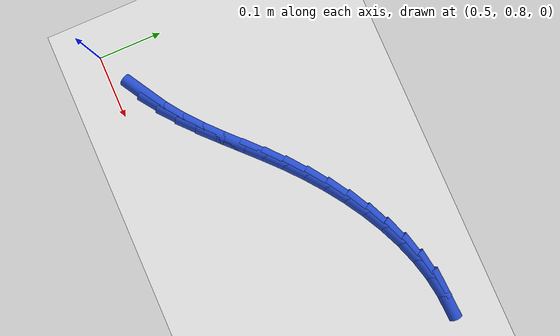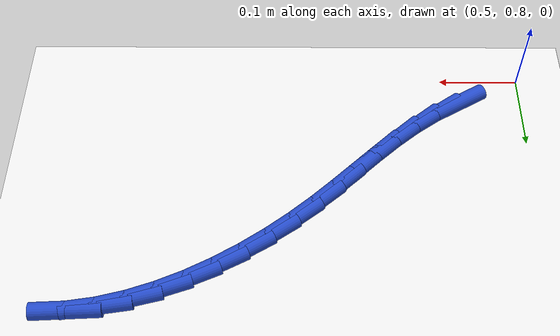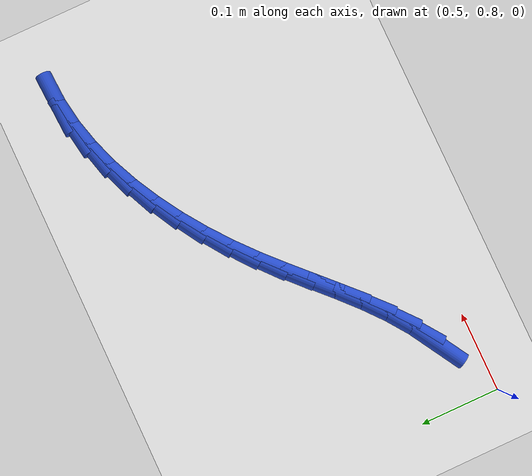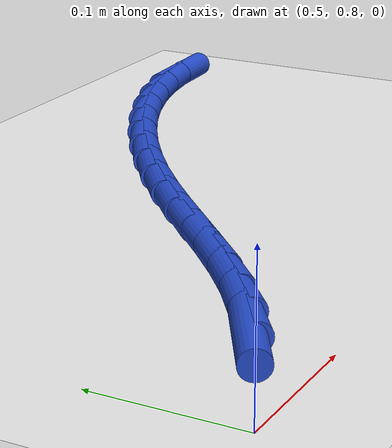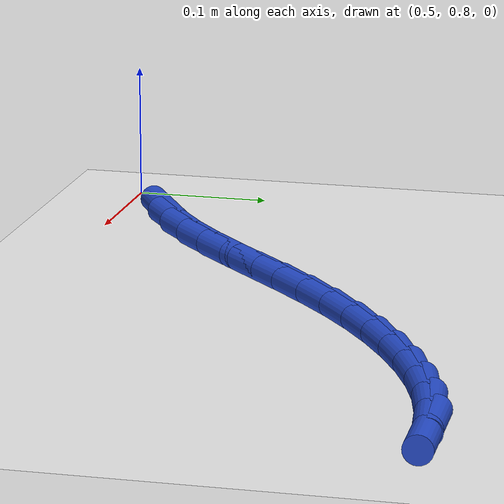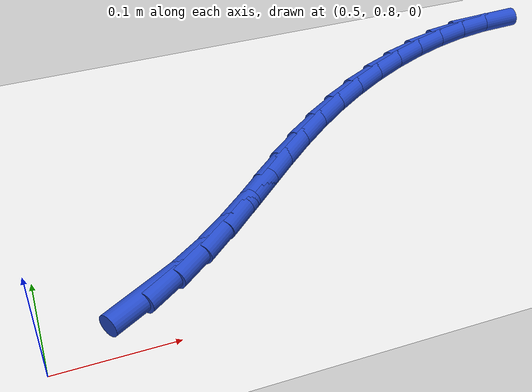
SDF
<sdf version="1.6">
 <world name="default">
  <model name="ground_plane">
   <static>1</static>
   <link name="link">
    <collision name="collision">
     <geometry><plane><normal>0 0 1</normal><size>100 100</size></plane></geometry>
     <surface><friction><ode><mu>100</mu><mu2>50</mu2></ode></friction></surface>
    </collision>
    <visual name="visual">
     <cast_shadows>0</cast_shadows>
     <geometry><plane><normal>0 0 1</normal><size>100 100</size></plane></geometry>
     <material>
      <script><uri>file://media/materials/scripts/gazebo.material</uri><name>Gazebo/WhiteGlow</name></script>
     </material>
    </visual>
   </link>
  </model>
  <model name="line">
   <link name="link_32">
    <pose>0.5834914352834218 0.8443133270521206 0.01 0 1.57 0.5356910672907709</pose>
    <collision name="collision">
     <geometry><cylinder><radius>0.01</radius><length>0.08</length></cylinder></geometry>
    </collision>
    <visual name="visual">
     <material>
      <script><name>Gazebo/Blue</name><uri>file://media/materials/scripts/gazebo.material</uri></script>
     </material>
     <geometry><cylinder><radius>0.01</radius><length>0.08</length></cylinder></geometry>
    </visual>
   </link>
   <link name="link_33">
    <pose>0.6121879825994719 0.861347238145395 0.01 0 1.57 0.6248551662311486</pose>
    <collision name="collision">
     <geometry><cylinder><radius>0.01</radius><length>0.08</length></cylinder></geometry>
    </collision>
    <visual name="visual">
     <material>
      <script><name>Gazebo/Blue</name><uri>file://media/materials/scripts/gazebo.material</uri></script>
     </material>
     <geometry><cylinder><radius>0.01</radius><length>0.08</length></cylinder></geometry>
    </visual>
   </link>
   <link name="link_34">
    <pose>0.6391800501746308 0.8808156512102565 0.01 0 1.57 0.6968018063996695</pose>
    <collision name="collision">
     <geometry><cylinder><radius>0.01</radius><length>0.08</length></cylinder></geometry>
    </collision>
    <visual name="visual">
     <material>
      <script><name>Gazebo/Blue</name><uri>file://media/materials/scripts/gazebo.material</uri></script>
     </material>
     <geometry><cylinder><radius>0.01</radius><length>0.08</length></cylinder></geometry>
    </visual>
   </link>
   <link name="link_35">
    <pose>0.6648600134872417 0.90230556638586 0.01 0 1.57 0.7449819966224062</pose>
    <collision name="collision">
     <geometry><cylinder><radius>0.01</radius><length>0.08</length></cylinder></geometry>
    </collision>
    <visual name="visual">
     <material>
      <script><name>Gazebo/Blue</name><uri>file://media/materials/scripts/gazebo.material</uri></script>
     </material>
     <geometry><cylinder><radius>0.01</radius><length>0.08</length></cylinder></geometry>
    </visual>
   </link>
   <link name="link_36">
    <pose>0.6897394456837247 0.9252510458464285 0.01 0 1.57 0.769800889194971</pose>
    <collision name="collision">
     <geometry><cylinder><radius>0.01</radius><length>0.08</length></cylinder></geometry>
    </collision>
    <visual name="visual">
     <material>
      <script><name>Gazebo/Blue</name><uri>file://media/materials/scripts/gazebo.material</uri></script>
     </material>
     <geometry><cylinder><radius>0.01</radius><length>0.08</length></cylinder></geometry>
    </visual>
   </link>
   <link name="link_37">
    <pose>0.7143299199105002 0.9490861517661855 0.01 0 1.57 0.7720383358857075</pose>
    <collision name="collision">
     <geometry><cylinder><radius>0.01</radius><length>0.08</length></cylinder></geometry>
    </collision>
    <visual name="visual">
     <material>
      <script><name>Gazebo/Blue</name><uri>file://media/materials/scripts/gazebo.material</uri></script>
     </material>
     <geometry><cylinder><radius>0.01</radius><length>0.08</length></cylinder></geometry>
    </visual>
   </link>
   <link name="link_38">
    <pose>0.7391430093139882 0.9732449463193542 0.01 0 1.57 0.7524419171120212</pose>
    <collision name="collision">
     <geometry><cylinder><radius>0.01</radius><length>0.08</length></cylinder></geometry>
    </collision>
    <visual name="visual">
     <material>
      <script><name>Gazebo/Blue</name><uri>file://media/materials/scripts/gazebo.material</uri></script>
     </material>
     <geometry><cylinder><radius>0.01</radius><length>0.08</length></cylinder></geometry>
    </visual>
   </link>
   <link name="link_39">
    <pose>0.7646902870406087 0.9971614916801576 0.01 0 1.57 0.7125704736528095</pose>
    <collision name="collision">
     <geometry><cylinder><radius>0.01</radius><length>0.08</length></cylinder></geometry>
    </collision>
    <visual name="visual">
     <material>
      <script><name>Gazebo/Blue</name><uri>file://media/materials/scripts/gazebo.material</uri></script>
     </material>
     <geometry><cylinder><radius>0.01</radius><length>0.08</length></cylinder></geometry>
    </visual>
   </link>
   <link name="link_40">
    <pose>0.7914505672919653 1.0202825901623689 0.01 0 1.57 0.6632201292800862</pose>
    <collision name="collision">
     <geometry><cylinder><radius>0.01</radius><length>0.08</length></cylinder></geometry>
    </collision>
    <visual name="visual">
     <material>
      <script><name>Gazebo/Blue</name><uri>file://media/materials/scripts/gazebo.material</uri></script>
     </material>
     <geometry><cylinder><radius>0.01</radius><length>0.08</length></cylinder></geometry>
    </visual>
   </link>
   <link name="link_41">
    <pose>0.8195125270752759 1.0422067706487284 0.01 0 1.57 0.6104533582409338</pose>
    <collision name="collision">
     <geometry><cylinder><radius>0.01</radius><length>0.08</length></cylinder></geometry>
    </collision>
    <visual name="visual">
     <material>
      <script><name>Gazebo/Blue</name><uri>file://media/materials/scripts/gazebo.material</uri></script>
     </material>
     <geometry><cylinder><radius>0.01</radius><length>0.08</length></cylinder></geometry>
    </visual>
   </link>
   <link name="link_42">
    <pose>0.8487086473389942 1.0626321981231703 0.01 0 1.57 0.5532800253266655</pose>
    <collision name="collision">
     <geometry><cylinder><radius>0.01</radius><length>0.08</length></cylinder></geometry>
    </collision>
    <visual name="visual">
     <material>
      <script><name>Gazebo/Blue</name><uri>file://media/materials/scripts/gazebo.material</uri></script>
     </material>
     <geometry><cylinder><radius>0.01</radius><length>0.08</length></cylinder></geometry>
    </visual>
   </link>
   <link name="link_43">
    <pose>0.8788669325456652 1.0812587785004035 0.01 0 1.57 0.4905054897612987</pose>
    <collision name="collision">
     <geometry><cylinder><radius>0.01</radius><length>0.08</length></cylinder></geometry>
    </collision>
    <visual name="visual">
     <material>
      <script><name>Gazebo/Blue</name><uri>file://media/materials/scripts/gazebo.material</uri></script>
     </material>
     <geometry><cylinder><radius>0.01</radius><length>0.08</length></cylinder></geometry>
    </visual>
   </link>
   <link name="link_44">
    <pose>0.9098153871578345 1.0977864176951366 0.01 0 1.57 0.4208399566569972</pose>
    <collision name="collision">
     <geometry><cylinder><radius>0.01</radius><length>0.08</length></cylinder></geometry>
    </collision>
    <visual name="visual">
     <material>
      <script><name>Gazebo/Blue</name><uri>file://media/materials/scripts/gazebo.material</uri></script>
     </material>
     <geometry><cylinder><radius>0.01</radius><length>0.08</length></cylinder></geometry>
    </visual>
   </link>
   <link name="link_45">
    <pose>0.9413820156380472 1.1119150216220777 0.01 0 1.57 0.3429222437895024</pose>
    <collision name="collision">
     <geometry><cylinder><radius>0.01</radius><length>0.08</length></cylinder></geometry>
    </collision>
    <visual name="visual">
     <material>
      <script><name>Gazebo/Blue</name><uri>file://media/materials/scripts/gazebo.material</uri></script>
     </material>
     <geometry><cylinder><radius>0.01</radius><length>0.08</length></cylinder></geometry>
    </visual>
   </link>
   <link name="link_46">
    <pose>0.9733948224488482 1.1233444961959358 0.01 0 1.57 0.255401556500852</pose>
    <collision name="collision">
     <geometry><cylinder><radius>0.01</radius><length>0.08</length></cylinder></geometry>
    </collision>
    <visual name="visual">
     <material>
      <script><name>Gazebo/Blue</name><uri>file://media/materials/scripts/gazebo.material</uri></script>
     </material>
     <geometry><cylinder><radius>0.01</radius><length>0.08</length></cylinder></geometry>
    </visual>
   </link>
   <link name="link_47">
    <pose>1.0056818120527837 1.1317747473314195 0.01 0 1.57 0.15710950941002946</pose>
    <collision name="collision">
     <geometry><cylinder><radius>0.01</radius><length>0.08</length></cylinder></geometry>
    </collision>
    <visual name="visual">
     <material>
      <script><name>Gazebo/Blue</name><uri>file://media/materials/scripts/gazebo.material</uri></script>
     </material>
     <geometry><cylinder><radius>0.01</radius><length>0.08</length></cylinder></geometry>
    </visual>
   </link>
   <link name="link_48">
    <pose>1.0380709889123982 1.136905680943237 0.01 0 1.57 0.050139015077742856</pose>
    <collision name="collision">
     <geometry><cylinder><radius>0.01</radius><length>0.08</length></cylinder></geometry>
    </collision>
    <visual name="visual">
     <material>
      <script><name>Gazebo/Blue</name><uri>file://media/materials/scripts/gazebo.material</uri></script>
     </material>
     <geometry><cylinder><radius>0.01</radius><length>0.08</length></cylinder></geometry>
    </visual>
   </link>
  </model>
 </world>
</sdf>
